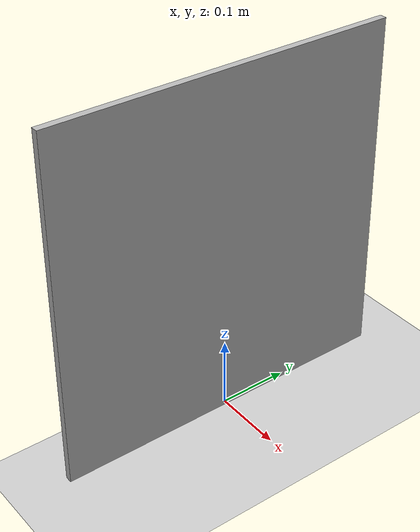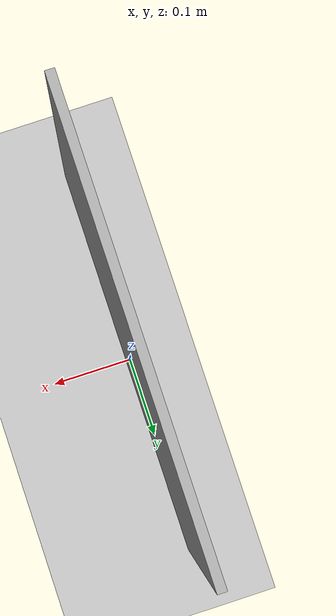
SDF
<?xml version="1.0" ?>
<sdf version="1.5">
  <world name="default">
    <!-- A global light source -->
    <include>
      <uri>model://sun</uri>
    </include>
    <!-- A ground plane -->
    <include>
      <uri>model://ground_plane</uri>
    </include>
    <include>
      <uri>model://asphalt_plane</uri>
    </include>
    <include>
      <uri>/media/mohamed/C03CCDB43CCDA62E/tutorials/Innopolis/Year_2/Project/drone_ws/models/marker0/model.sdf</uri>
    </include>
    <physics name='default_physics' default='0' type='ode'>
      <gravity>0 0 -9.8066</gravity>
      <ode>
        <solver>
          <type>quick</type>
          <iters>10</iters>
          <sor>1.3</sor>
          <use_dynamic_moi_rescaling>0</use_dynamic_moi_rescaling>
        </solver>
        <constraints>
          <cfm>0</cfm>
          <erp>0.2</erp>
          <contact_max_correcting_vel>100</contact_max_correcting_vel>
          <contact_surface_layer>0.001</contact_surface_layer>
        </constraints>
      </ode>
      <max_step_size>0.004</max_step_size>
      <real_time_factor>1</real_time_factor>
      <real_time_update_rate>250</real_time_update_rate>
      <magnetic_field>6.0e-6 2.3e-5 -4.2e-5</magnetic_field>
    </physics>
  </world>
</sdf>

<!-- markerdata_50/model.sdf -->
<sdf version="1.6">
  <model name="MarkerData_50">
    <static>true</static>
    <link name="link">
      <visual name="visual">
        <geometry>
          <mesh>
            <uri>model://markerdata_50/meshes/MarkerData_50.dae</uri>
          <scale>1.0 1.0 1.0</scale></mesh>
        </geometry>
      </visual>
    </link>
  </model>
</sdf>
